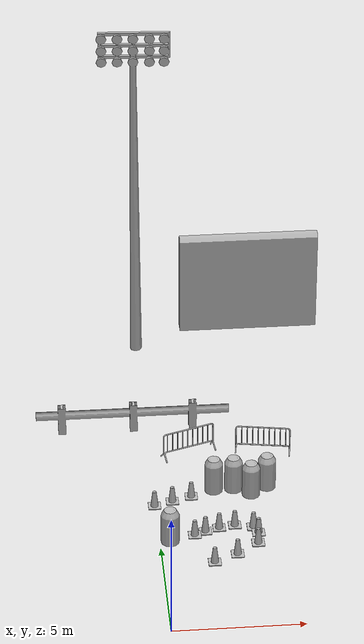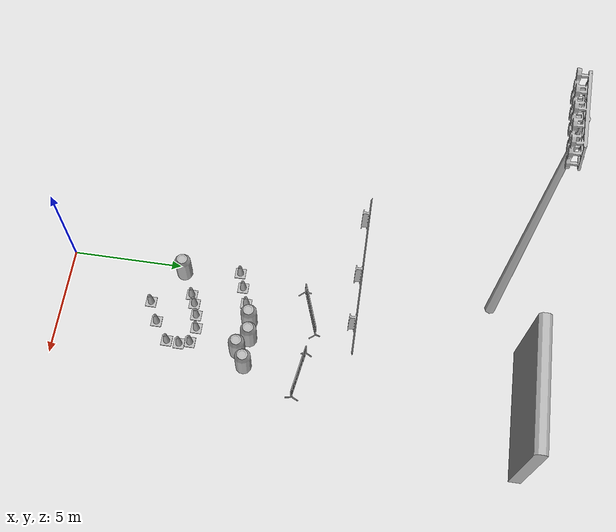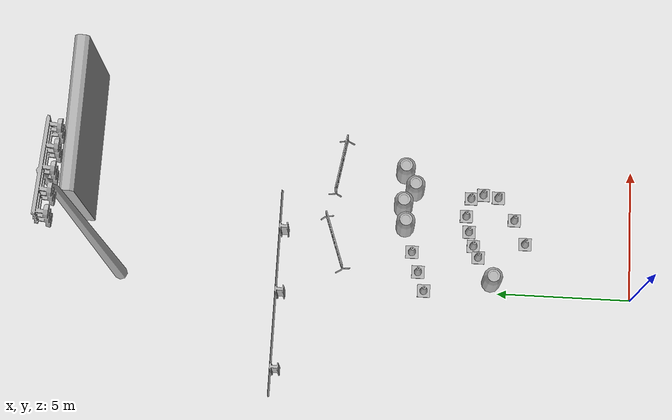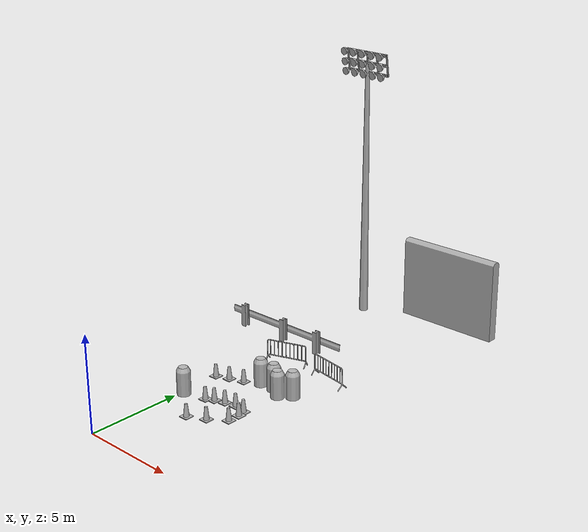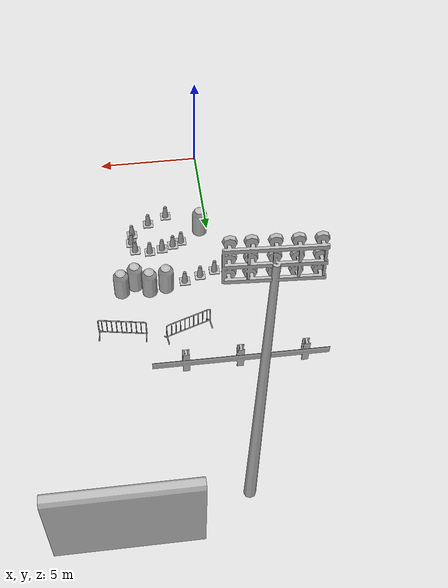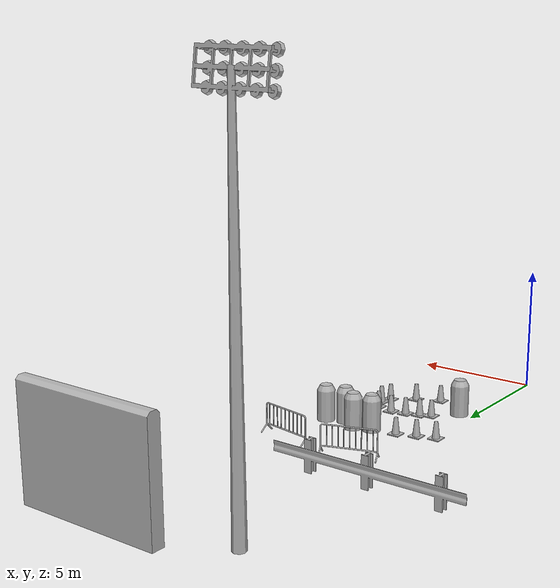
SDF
<sdf version="1.7">
 <world name="default">
  <model name="aws_robomaker_racetrack_CrashworthBucket_01_04">
   <frame name="aws_CrashworthBucket_01::__model__" attached_to="aws_CrashworthBucket_01::body">
    <pose relative_to="__model__">0 0 0 0 -0 0</pose>
   </frame>
   <link name="aws_CrashworthBucket_01::body">
    <pose relative_to="aws_CrashworthBucket_01::__model__">0 0 0 0 -0 0</pose>
    <inertial>
     <mass>5</mass>
     <inertia><ixx>1</ixx><ixy>0</ixy><ixz>0</ixz><iyy>1</iyy><iyz>0</iyz><izz>1</izz></inertia>
    </inertial>
    <visual name="visual">
     <geometry>
      <mesh>
       <uri>file://models/aws_robomaker_racetrack_CrashworthBucket_01/meshes/aws_CrashworthBucket_01_visual.DAE</uri>
      </mesh>
     </geometry>
     <material><shader type="pixel"><normal_map>__default__</normal_map></shader></material>
     <meta><layer>0</layer></meta>
    </visual>
    <collision name="collision_0">
     <geometry>
      <mesh>
       <uri>file://models/aws_robomaker_racetrack_CrashworthBucket_01/meshes/aws_CrashworthBucket_01_collision.DAE</uri>
       <scale>1 1 1</scale>
      </mesh>
     </geometry>
     <surface>
      <friction>
       <ode><mu>1</mu><mu2>1</mu2><fdir1>0 0 0</fdir1><slip1>0</slip1><slip2>0</slip2></ode>
       <torsional>
        <coefficient>1</coefficient>
        <patch_radius>0</patch_radius>
        <surface_radius>0</surface_radius>
        <use_patch_radius>1</use_patch_radius>
        <ode><slip>0</slip></ode>
       </torsional>
      </friction>
      <bounce><restitution_coefficient>0</restitution_coefficient><threshold>1e+06</threshold></bounce>
      <contact>
       <collide_without_contact>0</collide_without_contact>
       <collide_without_contact_bitmask>1</collide_without_contact_bitmask>
       <collide_bitmask>1</collide_bitmask>
       <ode>
        <soft_cfm>0</soft_cfm>
        <soft_erp>0.2</soft_erp>
        <kp>1e+13</kp>
        <kd>1</kd>
        <max_vel>0.01</max_vel>
        <min_depth>0</min_depth>
       </ode>
       <bullet>
        <split_impulse>1</split_impulse>
        <split_impulse_penetration_threshold>-0.01</split_impulse_penetration_threshold>
        <soft_cfm>0</soft_cfm>
        <soft_erp>0.2</soft_erp>
        <kp>1e+13</kp>
        <kd>1</kd>
       </bullet>
      </contact>
     </surface>
    </collision>
   </link>
   <static>1</static>
   <pose>2.35672 8.58743 0.054 0 -0 0.094608</pose>
  </model>
  <model name="aws_robomaker_racetrack_CrashworthBucket_01_05">
   <frame name="aws_CrashworthBucket_01::__model__" attached_to="aws_CrashworthBucket_01::body">
    <pose relative_to="__model__">0 0 0 0 -0 0</pose>
   </frame>
   <link name="aws_CrashworthBucket_01::body">
    <pose relative_to="aws_CrashworthBucket_01::__model__">0 0 0 0 -0 0</pose>
    <inertial>
     <mass>5</mass>
     <inertia><ixx>1</ixx><ixy>0</ixy><ixz>0</ixz><iyy>1</iyy><iyz>0</iyz><izz>1</izz></inertia>
    </inertial>
    <visual name="visual">
     <geometry>
      <mesh>
       <uri>file://models/aws_robomaker_racetrack_CrashworthBucket_01/meshes/aws_CrashworthBucket_01_visual.DAE</uri>
      </mesh>
     </geometry>
     <material><shader type="pixel"><normal_map>__default__</normal_map></shader></material>
     <meta><layer>0</layer></meta>
    </visual>
    <collision name="collision_0">
     <geometry>
      <mesh>
       <uri>file://models/aws_robomaker_racetrack_CrashworthBucket_01/meshes/aws_CrashworthBucket_01_collision.DAE</uri>
       <scale>1 1 1</scale>
      </mesh>
     </geometry>
     <surface>
      <friction>
       <ode><mu>1</mu><mu2>1</mu2><fdir1>0 0 0</fdir1><slip1>0</slip1><slip2>0</slip2></ode>
       <torsional>
        <coefficient>1</coefficient>
        <patch_radius>0</patch_radius>
        <surface_radius>0</surface_radius>
        <use_patch_radius>1</use_patch_radius>
        <ode><slip>0</slip></ode>
       </torsional>
      </friction>
      <bounce><restitution_coefficient>0</restitution_coefficient><threshold>1e+06</threshold></bounce>
      <contact>
       <collide_without_contact>0</collide_without_contact>
       <collide_without_contact_bitmask>1</collide_without_contact_bitmask>
       <collide_bitmask>1</collide_bitmask>
       <ode>
        <soft_cfm>0</soft_cfm>
        <soft_erp>0.2</soft_erp>
        <kp>1e+13</kp>
        <kd>1</kd>
        <max_vel>0.01</max_vel>
        <min_depth>0</min_depth>
       </ode>
       <bullet>
        <split_impulse>1</split_impulse>
        <split_impulse_penetration_threshold>-0.01</split_impulse_penetration_threshold>
        <soft_cfm>0</soft_cfm>
        <soft_erp>0.2</soft_erp>
        <kp>1e+13</kp>
        <kd>1</kd>
       </bullet>
      </contact>
     </surface>
    </collision>
   </link>
   <static>1</static>
   <pose>3.14399 8.69292 0 0 -0 0.292667</pose>
  </model>
  <model name="aws_robomaker_racetrack_CrashworthBucket_01_43">
   <frame name="aws_CrashworthBucket_01::__model__" attached_to="aws_CrashworthBucket_01::body">
    <pose relative_to="__model__">0 0 0 0 -0 0</pose>
   </frame>
   <link name="aws_CrashworthBucket_01::body">
    <pose relative_to="aws_CrashworthBucket_01::__model__">0 0 0 0 -0 0</pose>
    <inertial>
     <mass>5</mass>
     <inertia><ixx>1</ixx><ixy>0</ixy><ixz>0</ixz><iyy>1</iyy><iyz>0</iyz><izz>1</izz></inertia>
    </inertial>
    <visual name="visual">
     <geometry>
      <mesh>
       <uri>file://models/aws_robomaker_racetrack_CrashworthBucket_01/meshes/aws_CrashworthBucket_01_visual.DAE</uri>
      </mesh>
     </geometry>
     <material><shader type="pixel"><normal_map>__default__</normal_map></shader></material>
     <meta><layer>0</layer></meta>
    </visual>
    <collision name="collision_0">
     <geometry>
      <mesh>
       <uri>file://models/aws_robomaker_racetrack_CrashworthBucket_01/meshes/aws_CrashworthBucket_01_collision.DAE</uri>
       <scale>1 1 1</scale>
      </mesh>
     </geometry>
     <surface>
      <friction>
       <ode><mu>1</mu><mu2>1</mu2><fdir1>0 0 0</fdir1><slip1>0</slip1><slip2>0</slip2></ode>
       <torsional>
        <coefficient>1</coefficient>
        <patch_radius>0</patch_radius>
        <surface_radius>0</surface_radius>
        <use_patch_radius>1</use_patch_radius>
        <ode><slip>0</slip></ode>
       </torsional>
      </friction>
      <bounce><restitution_coefficient>0</restitution_coefficient><threshold>1e+06</threshold></bounce>
      <contact>
       <collide_without_contact>0</collide_without_contact>
       <collide_without_contact_bitmask>1</collide_without_contact_bitmask>
       <collide_bitmask>1</collide_bitmask>
       <ode>
        <soft_cfm>0</soft_cfm>
        <soft_erp>0.2</soft_erp>
        <kp>1e+13</kp>
        <kd>1</kd>
        <max_vel>0.01</max_vel>
        <min_depth>0</min_depth>
       </ode>
       <bullet>
        <split_impulse>1</split_impulse>
        <split_impulse_penetration_threshold>-0.01</split_impulse_penetration_threshold>
        <soft_cfm>0</soft_cfm>
        <soft_erp>0.2</soft_erp>
        <kp>1e+13</kp>
        <kd>1</kd>
       </bullet>
      </contact>
     </surface>
    </collision>
   </link>
   <static>1</static>
   <pose>4.45229 8.66174 0.054 0 -0 0.095583</pose>
  </model>
  <model name="aws_robomaker_racetrack_CrashworthBucket_01_51">
   <frame name="aws_CrashworthBucket_01::__model__" attached_to="aws_CrashworthBucket_01::body">
    <pose relative_to="__model__">0 0 0 0 -0 0</pose>
   </frame>
   <link name="aws_CrashworthBucket_01::body">
    <pose relative_to="aws_CrashworthBucket_01::__model__">0 0 0 0 -0 0</pose>
    <inertial>
     <mass>5</mass>
     <inertia><ixx>1</ixx><ixy>0</ixy><ixz>0</ixz><iyy>1</iyy><iyz>0</iyz><izz>1</izz></inertia>
    </inertial>
    <visual name="visual">
     <geometry>
      <mesh>
       <uri>file://models/aws_robomaker_racetrack_CrashworthBucket_01/meshes/aws_CrashworthBucket_01_visual.DAE</uri>
      </mesh>
     </geometry>
     <material><shader type="pixel"><normal_map>__default__</normal_map></shader></material>
     <meta><layer>0</layer></meta>
    </visual>
    <collision name="collision_0">
     <geometry>
      <mesh>
       <uri>file://models/aws_robomaker_racetrack_CrashworthBucket_01/meshes/aws_CrashworthBucket_01_collision.DAE</uri>
       <scale>1 1 1</scale>
      </mesh>
     </geometry>
     <surface>
      <friction>
       <ode><mu>1</mu><mu2>1</mu2><fdir1>0 0 0</fdir1><slip1>0</slip1><slip2>0</slip2></ode>
       <torsional>
        <coefficient>1</coefficient>
        <patch_radius>0</patch_radius>
        <surface_radius>0</surface_radius>
        <use_patch_radius>1</use_patch_radius>
        <ode><slip>0</slip></ode>
       </torsional>
      </friction>
      <bounce><restitution_coefficient>0</restitution_coefficient><threshold>1e+06</threshold></bounce>
      <contact>
       <collide_without_contact>0</collide_without_contact>
       <collide_without_contact_bitmask>1</collide_without_contact_bitmask>
       <collide_bitmask>1</collide_bitmask>
       <ode>
        <soft_cfm>0</soft_cfm>
        <soft_erp>0.2</soft_erp>
        <kp>1e+13</kp>
        <kd>1</kd>
        <max_vel>0.01</max_vel>
        <min_depth>0</min_depth>
       </ode>
       <bullet>
        <split_impulse>1</split_impulse>
        <split_impulse_penetration_threshold>-0.01</split_impulse_penetration_threshold>
        <soft_cfm>0</soft_cfm>
        <soft_erp>0.2</soft_erp>
        <kp>1e+13</kp>
        <kd>1</kd>
       </bullet>
      </contact>
     </surface>
    </collision>
   </link>
   <static>1</static>
   <pose>0.381876 5.26765 0.138867 0 -0 0</pose>
  </model>
  <model name="aws_robomaker_racetrack_CrashworthBucket_01_53">
   <frame name="aws_CrashworthBucket_01::__model__" attached_to="aws_CrashworthBucket_01::body">
    <pose relative_to="__model__">0 0 0 0 -0 0</pose>
   </frame>
   <link name="aws_CrashworthBucket_01::body">
    <pose relative_to="aws_CrashworthBucket_01::__model__">0 0 0 0 -0 0</pose>
    <inertial>
     <mass>5</mass>
     <inertia><ixx>1</ixx><ixy>0</ixy><ixz>0</ixz><iyy>1</iyy><iyz>0</iyz><izz>1</izz></inertia>
    </inertial>
    <visual name="visual">
     <geometry>
      <mesh>
       <uri>file://models/aws_robomaker_racetrack_CrashworthBucket_01/meshes/aws_CrashworthBucket_01_visual.DAE</uri>
      </mesh>
     </geometry>
     <material><shader type="pixel"><normal_map>__default__</normal_map></shader></material>
     <meta><layer>0</layer></meta>
    </visual>
    <collision name="collision_0">
     <geometry>
      <mesh>
       <uri>file://models/aws_robomaker_racetrack_CrashworthBucket_01/meshes/aws_CrashworthBucket_01_collision.DAE</uri>
       <scale>1 1 1</scale>
      </mesh>
     </geometry>
     <surface>
      <friction>
       <ode><mu>1</mu><mu2>1</mu2><fdir1>0 0 0</fdir1><slip1>0</slip1><slip2>0</slip2></ode>
       <torsional>
        <coefficient>1</coefficient>
        <patch_radius>0</patch_radius>
        <surface_radius>0</surface_radius>
        <use_patch_radius>1</use_patch_radius>
        <ode><slip>0</slip></ode>
       </torsional>
      </friction>
      <bounce><restitution_coefficient>0</restitution_coefficient><threshold>1e+06</threshold></bounce>
      <contact>
       <collide_without_contact>0</collide_without_contact>
       <collide_without_contact_bitmask>1</collide_without_contact_bitmask>
       <collide_bitmask>1</collide_bitmask>
       <ode>
        <soft_cfm>0</soft_cfm>
        <soft_erp>0.2</soft_erp>
        <kp>1e+13</kp>
        <kd>1</kd>
        <max_vel>0.01</max_vel>
        <min_depth>0</min_depth>
       </ode>
       <bullet>
        <split_impulse>1</split_impulse>
        <split_impulse_penetration_threshold>-0.01</split_impulse_penetration_threshold>
        <soft_cfm>0</soft_cfm>
        <soft_erp>0.2</soft_erp>
        <kp>1e+13</kp>
        <kd>1</kd>
       </bullet>
      </contact>
     </surface>
    </collision>
   </link>
   <static>1</static>
   <pose>3.7947 8.27498 0 0 0 -0.244875</pose>
  </model>
  <model name="aws_robomaker_racetrack_Fence_01_01">
   <frame name="aws_Fence_01::__model__" attached_to="aws_Fence_01::body">
    <pose relative_to="__model__">0 0 0 0 -0 0</pose>
   </frame>
   <link name="aws_Fence_01::body">
    <pose relative_to="aws_Fence_01::__model__">0 0 0 0 -0 0</pose>
    <inertial>
     <mass>5</mass>
     <inertia><ixx>1</ixx><ixy>0</ixy><ixz>0</ixz><iyy>1</iyy><iyz>0</iyz><izz>1</izz></inertia>
    </inertial>
    <visual name="visual">
     <geometry>
      <mesh><uri>file://models/aws_robomaker_racetrack_Fence_01/meshes/aws_Fence_01_visual.DAE</uri></mesh>
     </geometry>
     <material><shader type="pixel"><normal_map>__default__</normal_map></shader></material>
     <meta><layer>0</layer></meta>
    </visual>
    <collision name="collision_0">
     <geometry>
      <mesh>
       <uri>file://models/aws_robomaker_racetrack_Fence_01/meshes/aws_Fence_01_collision.DAE</uri>
       <scale>1 1 1</scale>
      </mesh>
     </geometry>
     <surface>
      <friction>
       <ode><mu>1</mu><mu2>1</mu2><fdir1>0 0 0</fdir1><slip1>0</slip1><slip2>0</slip2></ode>
       <torsional>
        <coefficient>1</coefficient>
        <patch_radius>0</patch_radius>
        <surface_radius>0</surface_radius>
        <use_patch_radius>1</use_patch_radius>
        <ode><slip>0</slip></ode>
       </torsional>
      </friction>
      <bounce><restitution_coefficient>0</restitution_coefficient><threshold>1e+06</threshold></bounce>
      <contact>
       <collide_without_contact>0</collide_without_contact>
       <collide_without_contact_bitmask>1</collide_without_contact_bitmask>
       <collide_bitmask>1</collide_bitmask>
       <ode>
        <soft_cfm>0</soft_cfm>
        <soft_erp>0.2</soft_erp>
        <kp>1e+13</kp>
        <kd>1</kd>
        <max_vel>0.01</max_vel>
        <min_depth>0</min_depth>
       </ode>
       <bullet>
        <split_impulse>1</split_impulse>
        <split_impulse_penetration_threshold>-0.01</split_impulse_penetration_threshold>
        <soft_cfm>0</soft_cfm>
        <soft_erp>0.2</soft_erp>
        <kp>1e+13</kp>
        <kd>1</kd>
       </bullet>
      </contact>
     </surface>
    </collision>
   </link>
   <static>1</static>
   <pose>-0.500271 13.1587 0 0 0 -1.57272</pose>
  </model>
  <model name="aws_robomaker_racetrack_Fence_02_05">
   <frame name="aws_Fence_02::__model__" attached_to="aws_Fence_02::body">
    <pose relative_to="__model__">0 0 0 0 -0 0</pose>
   </frame>
   <link name="aws_Fence_02::body">
    <pose relative_to="aws_Fence_02::__model__">0 0 0 0 -0 0</pose>
    <inertial>
     <mass>5</mass>
     <inertia><ixx>9.6</ixx><ixy>0</ixy><ixz>0</ixz><iyy>8.2</iyy><iyz>0</iyz><izz>2.1</izz></inertia>
    </inertial>
    <visual name="visual">
     <geometry>
      <mesh><uri>file://models/aws_robomaker_racetrack_Fence_02/meshes/aws_Fence_02_visual.DAE</uri></mesh>
     </geometry>
     <material><shader type="pixel"><normal_map>__default__</normal_map></shader></material>
     <meta><layer>0</layer></meta>
    </visual>
    <collision name="collision_0">
     <geometry>
      <mesh>
       <uri>file://models/aws_robomaker_racetrack_Fence_02/meshes/aws_Fence_02_collision.DAE</uri>
       <scale>1 1 1</scale>
      </mesh>
     </geometry>
     <surface>
      <friction>
       <ode><mu>1</mu><mu2>1</mu2><fdir1>0 0 0</fdir1><slip1>0</slip1><slip2>0</slip2></ode>
       <torsional>
        <coefficient>1</coefficient>
        <patch_radius>0</patch_radius>
        <surface_radius>0</surface_radius>
        <use_patch_radius>1</use_patch_radius>
        <ode><slip>0</slip></ode>
       </torsional>
      </friction>
      <bounce><restitution_coefficient>0</restitution_coefficient><threshold>1e+06</threshold></bounce>
      <contact>
       <collide_without_contact>0</collide_without_contact>
       <collide_without_contact_bitmask>1</collide_without_contact_bitmask>
       <collide_bitmask>1</collide_bitmask>
      </contact>
     </surface>
    </collision>
   </link>
   <static>1</static>
   <pose>4.57205 11.1353 0 0 0 -1.73608</pose>
  </model>
  <model name="aws_robomaker_racetrack_Fence_02_07">
   <frame name="aws_Fence_02::__model__" attached_to="aws_Fence_02::body">
    <pose relative_to="__model__">0 0 0 0 -0 0</pose>
   </frame>
   <link name="aws_Fence_02::body">
    <pose relative_to="aws_Fence_02::__model__">0 0 0 0 -0 0</pose>
    <inertial>
     <mass>5</mass>
     <inertia><ixx>9.6</ixx><ixy>0</ixy><ixz>0</ixz><iyy>8.2</iyy><iyz>0</iyz><izz>2.1</izz></inertia>
    </inertial>
    <visual name="visual">
     <geometry>
      <mesh><uri>file://models/aws_robomaker_racetrack_Fence_02/meshes/aws_Fence_02_visual.DAE</uri></mesh>
     </geometry>
     <material><shader type="pixel"><normal_map>__default__</normal_map></shader></material>
     <meta><layer>0</layer></meta>
    </visual>
    <collision name="collision_0">
     <geometry>
      <mesh>
       <uri>file://models/aws_robomaker_racetrack_Fence_02/meshes/aws_Fence_02_collision.DAE</uri>
       <scale>1 1 1</scale>
      </mesh>
     </geometry>
     <surface>
      <friction>
       <ode><mu>1</mu><mu2>1</mu2><fdir1>0 0 0</fdir1><slip1>0</slip1><slip2>0</slip2></ode>
       <torsional>
        <coefficient>1</coefficient>
        <patch_radius>0</patch_radius>
        <surface_radius>0</surface_radius>
        <use_patch_radius>1</use_patch_radius>
        <ode><slip>0</slip></ode>
       </torsional>
      </friction>
      <bounce><restitution_coefficient>0</restitution_coefficient><threshold>1e+06</threshold></bounce>
      <contact>
       <collide_without_contact>0</collide_without_contact>
       <collide_without_contact_bitmask>1</collide_without_contact_bitmask>
       <collide_bitmask>1</collide_bitmask>
      </contact>
     </surface>
    </collision>
   </link>
   <static>1</static>
   <pose>1.60246 11.2143 0 0 -0 1.90339</pose>
  </model>
  <model name="aws_robomaker_racetrack_TrafficCone_01_00">
   <frame name="aws_TrafficCone_01::__model__" attached_to="aws_TrafficCone_01::body">
    <pose relative_to="__model__">0 0 0 0 -0 0</pose>
   </frame>
   <link name="aws_TrafficCone_01::body">
    <pose relative_to="aws_TrafficCone_01::__model__">0 0 0 0 -0 0</pose>
    <inertial>
     <mass>0.5</mass>
     <inertia><ixx>1</ixx><ixy>0</ixy><ixz>0</ixz><iyy>1</iyy><iyz>0</iyz><izz>1</izz></inertia>
    </inertial>
    <visual name="visual">
     <geometry>
      <mesh>
       <uri>file://models/aws_robomaker_racetrack_TrafficCone_01/meshes/aws_TrafficCone_01_visual.DAE</uri>
      </mesh>
     </geometry>
     <material><shader type="pixel"><normal_map>__default__</normal_map></shader></material>
     <meta><layer>0</layer></meta>
    </visual>
    <collision name="collision_0">
     <geometry>
      <mesh>
       <uri>file://models/aws_robomaker_racetrack_TrafficCone_01/meshes/aws_TrafficCone_01_coliision.DAE</uri>
       <scale>1 1 1</scale>
      </mesh>
     </geometry>
     <surface>
      <friction>
       <ode><mu>1</mu><mu2>1</mu2><fdir1>0 0 0</fdir1><slip1>0</slip1><slip2>0</slip2></ode>
       <torsional>
        <coefficient>1</coefficient>
        <patch_radius>0</patch_radius>
        <surface_radius>0</surface_radius>
        <use_patch_radius>1</use_patch_radius>
        <ode><slip>0</slip></ode>
       </torsional>
      </friction>
      <bounce><restitution_coefficient>0</restitution_coefficient><threshold>1e+06</threshold></bounce>
      <contact>
       <collide_without_contact>0</collide_without_contact>
       <collide_without_contact_bitmask>1</collide_without_contact_bitmask>
       <collide_bitmask>1</collide_bitmask>
       <ode>
        <soft_cfm>0</soft_cfm>
        <soft_erp>0.2</soft_erp>
        <kp>1e+13</kp>
        <kd>1</kd>
        <max_vel>0.01</max_vel>
        <min_depth>0</min_depth>
       </ode>
       <bullet>
        <split_impulse>1</split_impulse>
        <split_impulse_penetration_threshold>-0.01</split_impulse_penetration_threshold>
        <soft_cfm>0</soft_cfm>
        <soft_erp>0.2</soft_erp>
        <kp>1e+13</kp>
        <kd>1</kd>
       </bullet>
      </contact>
     </surface>
    </collision>
   </link>
   <static>1</static>
   <pose>1.97113 3.98946 0 0 -0 0</pose>
  </model>
  <model name="aws_robomaker_racetrack_TrafficCone_01_03">
   <frame name="aws_TrafficCone_01::__model__" attached_to="aws_TrafficCone_01::body">
    <pose relative_to="__model__">0 0 0 0 -0 0</pose>
   </frame>
   <link name="aws_TrafficCone_01::body">
    <pose relative_to="aws_TrafficCone_01::__model__">0 0 0 0 -0 0</pose>
    <inertial>
     <mass>0.5</mass>
     <inertia><ixx>1</ixx><ixy>0</ixy><ixz>0</ixz><iyy>1</iyy><iyz>0</iyz><izz>1</izz></inertia>
    </inertial>
    <visual name="visual">
     <geometry>
      <mesh>
       <uri>file://models/aws_robomaker_racetrack_TrafficCone_01/meshes/aws_TrafficCone_01_visual.DAE</uri>
      </mesh>
     </geometry>
     <material><shader type="pixel"><normal_map>__default__</normal_map></shader></material>
     <meta><layer>0</layer></meta>
    </visual>
    <collision name="collision_0">
     <geometry>
      <mesh>
       <uri>file://models/aws_robomaker_racetrack_TrafficCone_01/meshes/aws_TrafficCone_01_coliision.DAE</uri>
       <scale>1 1 1</scale>
      </mesh>
     </geometry>
     <surface>
      <friction>
       <ode><mu>1</mu><mu2>1</mu2><fdir1>0 0 0</fdir1><slip1>0</slip1><slip2>0</slip2></ode>
       <torsional>
        <coefficient>1</coefficient>
        <patch_radius>0</patch_radius>
        <surface_radius>0</surface_radius>
        <use_patch_radius>1</use_patch_radius>
        <ode><slip>0</slip></ode>
       </torsional>
      </friction>
      <bounce><restitution_coefficient>0</restitution_coefficient><threshold>1e+06</threshold></bounce>
      <contact>
       <collide_without_contact>0</collide_without_contact>
       <collide_without_contact_bitmask>1</collide_without_contact_bitmask>
       <collide_bitmask>1</collide_bitmask>
       <ode>
        <soft_cfm>0</soft_cfm>
        <soft_erp>0.2</soft_erp>
        <kp>1e+13</kp>
        <kd>1</kd>
        <max_vel>0.01</max_vel>
        <min_depth>0</min_depth>
       </ode>
       <bullet>
        <split_impulse>1</split_impulse>
        <split_impulse_penetration_threshold>-0.01</split_impulse_penetration_threshold>
        <soft_cfm>0</soft_cfm>
        <soft_erp>0.2</soft_erp>
        <kp>1e+13</kp>
        <kd>1</kd>
       </bullet>
      </contact>
     </surface>
    </collision>
   </link>
   <static>1</static>
   <pose>3.73732 5.05737 0 0 -0 0</pose>
  </model>
  <model name="aws_robomaker_racetrack_TrafficCone_01_04">
   <frame name="aws_TrafficCone_01::__model__" attached_to="aws_TrafficCone_01::body">
    <pose relative_to="__model__">0 0 0 0 -0 0</pose>
   </frame>
   <link name="aws_TrafficCone_01::body">
    <pose relative_to="aws_TrafficCone_01::__model__">0 0 0 0 -0 0</pose>
    <inertial>
     <mass>0.5</mass>
     <inertia><ixx>1</ixx><ixy>0</ixy><ixz>0</ixz><iyy>1</iyy><iyz>0</iyz><izz>1</izz></inertia>
    </inertial>
    <visual name="visual">
     <geometry>
      <mesh>
       <uri>file://models/aws_robomaker_racetrack_TrafficCone_01/meshes/aws_TrafficCone_01_visual.DAE</uri>
      </mesh>
     </geometry>
     <material><shader type="pixel"><normal_map>__default__</normal_map></shader></material>
     <meta><layer>0</layer></meta>
    </visual>
    <collision name="collision_0">
     <geometry>
      <mesh>
       <uri>file://models/aws_robomaker_racetrack_TrafficCone_01/meshes/aws_TrafficCone_01_coliision.DAE</uri>
       <scale>1 1 1</scale>
      </mesh>
     </geometry>
     <surface>
      <friction>
       <ode><mu>1</mu><mu2>1</mu2><fdir1>0 0 0</fdir1><slip1>0</slip1><slip2>0</slip2></ode>
       <torsional>
        <coefficient>1</coefficient>
        <patch_radius>0</patch_radius>
        <surface_radius>0</surface_radius>
        <use_patch_radius>1</use_patch_radius>
        <ode><slip>0</slip></ode>
       </torsional>
      </friction>
      <bounce><restitution_coefficient>0</restitution_coefficient><threshold>1e+06</threshold></bounce>
      <contact>
       <collide_without_contact>0</collide_without_contact>
       <collide_without_contact_bitmask>1</collide_without_contact_bitmask>
       <collide_bitmask>1</collide_bitmask>
       <ode>
        <soft_cfm>0</soft_cfm>
        <soft_erp>0.2</soft_erp>
        <kp>1e+13</kp>
        <kd>1</kd>
        <max_vel>0.01</max_vel>
        <min_depth>0</min_depth>
       </ode>
       <bullet>
        <split_impulse>1</split_impulse>
        <split_impulse_penetration_threshold>-0.01</split_impulse_penetration_threshold>
        <soft_cfm>0</soft_cfm>
        <soft_erp>0.2</soft_erp>
        <kp>1e+13</kp>
        <kd>1</kd>
       </bullet>
      </contact>
     </surface>
    </collision>
   </link>
   <static>1</static>
   <pose>3.6571 6.09365 0 0 -0 0</pose>
  </model>
  <model name="aws_robomaker_racetrack_TrafficCone_01_05">
   <frame name="aws_TrafficCone_01::__model__" attached_to="aws_TrafficCone_01::body">
    <pose relative_to="__model__">0 0 0 0 -0 0</pose>
   </frame>
   <link name="aws_TrafficCone_01::body">
    <pose relative_to="aws_TrafficCone_01::__model__">0 0 0 0 -0 0</pose>
    <inertial>
     <mass>0.5</mass>
     <inertia><ixx>1</ixx><ixy>0</ixy><ixz>0</ixz><iyy>1</iyy><iyz>0</iyz><izz>1</izz></inertia>
    </inertial>
    <visual name="visual">
     <geometry>
      <mesh>
       <uri>file://models/aws_robomaker_racetrack_TrafficCone_01/meshes/aws_TrafficCone_01_visual.DAE</uri>
      </mesh>
     </geometry>
     <material><shader type="pixel"><normal_map>__default__</normal_map></shader></material>
     <meta><layer>0</layer></meta>
    </visual>
    <collision name="collision_0">
     <geometry>
      <mesh>
       <uri>file://models/aws_robomaker_racetrack_TrafficCone_01/meshes/aws_TrafficCone_01_coliision.DAE</uri>
       <scale>1 1 1</scale>
      </mesh>
     </geometry>
     <surface>
      <friction>
       <ode><mu>1</mu><mu2>1</mu2><fdir1>0 0 0</fdir1><slip1>0</slip1><slip2>0</slip2></ode>
       <torsional>
        <coefficient>1</coefficient>
        <patch_radius>0</patch_radius>
        <surface_radius>0</surface_radius>
        <use_patch_radius>1</use_patch_radius>
        <ode><slip>0</slip></ode>
       </torsional>
      </friction>
      <bounce><restitution_coefficient>0</restitution_coefficient><threshold>1e+06</threshold></bounce>
      <contact>
       <collide_without_contact>0</collide_without_contact>
       <collide_without_contact_bitmask>1</collide_without_contact_bitmask>
       <collide_bitmask>1</collide_bitmask>
       <ode>
        <soft_cfm>0</soft_cfm>
        <soft_erp>0.2</soft_erp>
        <kp>1e+13</kp>
        <kd>1</kd>
        <max_vel>0.01</max_vel>
        <min_depth>0</min_depth>
       </ode>
       <bullet>
        <split_impulse>1</split_impulse>
        <split_impulse_penetration_threshold>-0.01</split_impulse_penetration_threshold>
        <soft_cfm>0</soft_cfm>
        <soft_erp>0.2</soft_erp>
        <kp>1e+13</kp>
        <kd>1</kd>
       </bullet>
      </contact>
     </surface>
    </collision>
   </link>
   <static>1</static>
   <pose>2.95265 6.25795 0 0 -0 0</pose>
  </model>
  <model name="aws_robomaker_racetrack_TrafficCone_01_06">
   <frame name="aws_TrafficCone_01::__model__" attached_to="aws_TrafficCone_01::body">
    <pose relative_to="__model__">0 0 0 0 -0 0</pose>
   </frame>
   <link name="aws_TrafficCone_01::body">
    <pose relative_to="aws_TrafficCone_01::__model__">0 0 0 0 -0 0</pose>
    <inertial>
     <mass>0.5</mass>
     <inertia><ixx>1</ixx><ixy>0</ixy><ixz>0</ixz><iyy>1</iyy><iyz>0</iyz><izz>1</izz></inertia>
    </inertial>
    <visual name="visual">
     <geometry>
      <mesh>
       <uri>file://models/aws_robomaker_racetrack_TrafficCone_01/meshes/aws_TrafficCone_01_visual.DAE</uri>
      </mesh>
     </geometry>
     <material><shader type="pixel"><normal_map>__default__</normal_map></shader></material>
     <meta><layer>0</layer></meta>
    </visual>
    <collision name="collision_0">
     <geometry>
      <mesh>
       <uri>file://models/aws_robomaker_racetrack_TrafficCone_01/meshes/aws_TrafficCone_01_coliision.DAE</uri>
       <scale>1 1 1</scale>
      </mesh>
     </geometry>
     <surface>
      <friction>
       <ode><mu>1</mu><mu2>1</mu2><fdir1>0 0 0</fdir1><slip1>0</slip1><slip2>0</slip2></ode>
       <torsional>
        <coefficient>1</coefficient>
        <patch_radius>0</patch_radius>
        <surface_radius>0</surface_radius>
        <use_patch_radius>1</use_patch_radius>
        <ode><slip>0</slip></ode>
       </torsional>
      </friction>
      <bounce><restitution_coefficient>0</restitution_coefficient><threshold>1e+06</threshold></bounce>
      <contact>
       <collide_without_contact>0</collide_without_contact>
       <collide_without_contact_bitmask>1</collide_without_contact_bitmask>
       <collide_bitmask>1</collide_bitmask>
       <ode>
        <soft_cfm>0</soft_cfm>
        <soft_erp>0.2</soft_erp>
        <kp>1e+13</kp>
        <kd>1</kd>
        <max_vel>0.01</max_vel>
        <min_depth>0</min_depth>
       </ode>
       <bullet>
        <split_impulse>1</split_impulse>
        <split_impulse_penetration_threshold>-0.01</split_impulse_penetration_threshold>
        <soft_cfm>0</soft_cfm>
        <soft_erp>0.2</soft_erp>
        <kp>1e+13</kp>
        <kd>1</kd>
       </bullet>
      </contact>
     </surface>
    </collision>
   </link>
   <static>1</static>
   <pose>2.33949 6.13594 0 0 -0 0</pose>
  </model>
  <model name="aws_robomaker_racetrack_TrafficCone_01_07">
   <frame name="aws_TrafficCone_01::__model__" attached_to="aws_TrafficCone_01::body">
    <pose relative_to="__model__">0 0 0 0 -0 0</pose>
   </frame>
   <link name="aws_TrafficCone_01::body">
    <pose relative_to="aws_TrafficCone_01::__model__">0 0 0 0 -0 0</pose>
    <inertial>
     <mass>0.5</mass>
     <inertia><ixx>1</ixx><ixy>0</ixy><ixz>0</ixz><iyy>1</iyy><iyz>0</iyz><izz>1</izz></inertia>
    </inertial>
    <visual name="visual">
     <geometry>
      <mesh>
       <uri>file://models/aws_robomaker_racetrack_TrafficCone_01/meshes/aws_TrafficCone_01_visual.DAE</uri>
      </mesh>
     </geometry>
     <material><shader type="pixel"><normal_map>__default__</normal_map></shader></material>
     <meta><layer>0</layer></meta>
    </visual>
    <collision name="collision_0">
     <geometry>
      <mesh>
       <uri>file://models/aws_robomaker_racetrack_TrafficCone_01/meshes/aws_TrafficCone_01_coliision.DAE</uri>
       <scale>1 1 1</scale>
      </mesh>
     </geometry>
     <surface>
      <friction>
       <ode><mu>1</mu><mu2>1</mu2><fdir1>0 0 0</fdir1><slip1>0</slip1><slip2>0</slip2></ode>
       <torsional>
        <coefficient>1</coefficient>
        <patch_radius>0</patch_radius>
        <surface_radius>0</surface_radius>
        <use_patch_radius>1</use_patch_radius>
        <ode><slip>0</slip></ode>
       </torsional>
      </friction>
      <bounce><restitution_coefficient>0</restitution_coefficient><threshold>1e+06</threshold></bounce>
      <contact>
       <collide_without_contact>0</collide_without_contact>
       <collide_without_contact_bitmask>1</collide_without_contact_bitmask>
       <collide_bitmask>1</collide_bitmask>
       <ode>
        <soft_cfm>0</soft_cfm>
        <soft_erp>0.2</soft_erp>
        <kp>1e+13</kp>
        <kd>1</kd>
        <max_vel>0.01</max_vel>
        <min_depth>0</min_depth>
       </ode>
       <bullet>
        <split_impulse>1</split_impulse>
        <split_impulse_penetration_threshold>-0.01</split_impulse_penetration_threshold>
        <soft_cfm>0</soft_cfm>
        <soft_erp>0.2</soft_erp>
        <kp>1e+13</kp>
        <kd>1</kd>
       </bullet>
      </contact>
     </surface>
    </collision>
   </link>
   <static>1</static>
   <pose>1.79176 5.95512 0 0 -0 0</pose>
  </model>
  <model name="aws_robomaker_racetrack_TrafficCone_01_08">
   <frame name="aws_TrafficCone_01::__model__" attached_to="aws_TrafficCone_01::body">
    <pose relative_to="__model__">0 0 0 0 -0 0</pose>
   </frame>
   <link name="aws_TrafficCone_01::body">
    <pose relative_to="aws_TrafficCone_01::__model__">0 0 0 0 -0 0</pose>
    <inertial>
     <mass>0.5</mass>
     <inertia><ixx>1</ixx><ixy>0</ixy><ixz>0</ixz><iyy>1</iyy><iyz>0</iyz><izz>1</izz></inertia>
    </inertial>
    <visual name="visual">
     <geometry>
      <mesh>
       <uri>file://models/aws_robomaker_racetrack_TrafficCone_01/meshes/aws_TrafficCone_01_visual.DAE</uri>
      </mesh>
     </geometry>
     <material><shader type="pixel"><normal_map>__default__</normal_map></shader></material>
     <meta><layer>0</layer></meta>
    </visual>
    <collision name="collision_0">
     <geometry>
      <mesh>
       <uri>file://models/aws_robomaker_racetrack_TrafficCone_01/meshes/aws_TrafficCone_01_coliision.DAE</uri>
       <scale>1 1 1</scale>
      </mesh>
     </geometry>
     <surface>
      <friction>
       <ode><mu>1</mu><mu2>1</mu2><fdir1>0 0 0</fdir1><slip1>0</slip1><slip2>0</slip2></ode>
       <torsional>
        <coefficient>1</coefficient>
        <patch_radius>0</patch_radius>
        <surface_radius>0</surface_radius>
        <use_patch_radius>1</use_patch_radius>
        <ode><slip>0</slip></ode>
       </torsional>
      </friction>
      <bounce><restitution_coefficient>0</restitution_coefficient><threshold>1e+06</threshold></bounce>
      <contact>
       <collide_without_contact>0</collide_without_contact>
       <collide_without_contact_bitmask>1</collide_without_contact_bitmask>
       <collide_bitmask>1</collide_bitmask>
       <ode>
        <soft_cfm>0</soft_cfm>
        <soft_erp>0.2</soft_erp>
        <kp>1e+13</kp>
        <kd>1</kd>
        <max_vel>0.01</max_vel>
        <min_depth>0</min_depth>
       </ode>
       <bullet>
        <split_impulse>1</split_impulse>
        <split_impulse_penetration_threshold>-0.01</split_impulse_penetration_threshold>
        <soft_cfm>0</soft_cfm>
        <soft_erp>0.2</soft_erp>
        <kp>1e+13</kp>
        <kd>1</kd>
       </bullet>
      </contact>
     </surface>
    </collision>
   </link>
   <static>1</static>
   <pose>2.88374 4.42378 -0 0 -0 0</pose>
  </model>
  <model name="aws_robomaker_racetrack_TrafficCone_01_09">
   <frame name="aws_TrafficCone_01::__model__" attached_to="aws_TrafficCone_01::body">
    <pose relative_to="__model__">0 0 0 0 -0 0</pose>
   </frame>
   <link name="aws_TrafficCone_01::body">
    <pose relative_to="aws_TrafficCone_01::__model__">0 0 0 0 -0 0</pose>
    <inertial>
     <mass>0.5</mass>
     <inertia><ixx>1</ixx><ixy>0</ixy><ixz>0</ixz><iyy>1</iyy><iyz>0</iyz><izz>1</izz></inertia>
    </inertial>
    <visual name="visual">
     <geometry>
      <mesh>
       <uri>file://models/aws_robomaker_racetrack_TrafficCone_01/meshes/aws_TrafficCone_01_visual.DAE</uri>
      </mesh>
     </geometry>
     <material><shader type="pixel"><normal_map>__default__</normal_map></shader></material>
     <meta><layer>0</layer></meta>
    </visual>
    <collision name="collision_0">
     <geometry>
      <mesh>
       <uri>file://models/aws_robomaker_racetrack_TrafficCone_01/meshes/aws_TrafficCone_01_coliision.DAE</uri>
       <scale>1 1 1</scale>
      </mesh>
     </geometry>
     <surface>
      <friction>
       <ode><mu>1</mu><mu2>1</mu2><fdir1>0 0 0</fdir1><slip1>0</slip1><slip2>0</slip2></ode>
       <torsional>
        <coefficient>1</coefficient>
        <patch_radius>0</patch_radius>
        <surface_radius>0</surface_radius>
        <use_patch_radius>1</use_patch_radius>
        <ode><slip>0</slip></ode>
       </torsional>
      </friction>
      <bounce><restitution_coefficient>0</restitution_coefficient><threshold>1e+06</threshold></bounce>
      <contact>
       <collide_without_contact>0</collide_without_contact>
       <collide_without_contact_bitmask>1</collide_without_contact_bitmask>
       <collide_bitmask>1</collide_bitmask>
       <ode>
        <soft_cfm>0</soft_cfm>
        <soft_erp>0.2</soft_erp>
        <kp>1e+13</kp>
        <kd>1</kd>
        <max_vel>0.01</max_vel>
        <min_depth>0</min_depth>
       </ode>
       <bullet>
        <split_impulse>1</split_impulse>
        <split_impulse_penetration_threshold>-0.01</split_impulse_penetration_threshold>
        <soft_cfm>0</soft_cfm>
        <soft_erp>0.2</soft_erp>
        <kp>1e+13</kp>
        <kd>1</kd>
       </bullet>
      </contact>
     </surface>
    </collision>
   </link>
   <static>1</static>
   <pose>1.36541 5.75721 0 0 -0 0</pose>
  </model>
  <model name="aws_robomaker_racetrack_TrafficCone_01_10">
   <frame name="aws_TrafficCone_01::__model__" attached_to="aws_TrafficCone_01::body">
    <pose relative_to="__model__">0 0 0 0 -0 0</pose>
   </frame>
   <link name="aws_TrafficCone_01::body">
    <pose relative_to="aws_TrafficCone_01::__model__">0 0 0 0 -0 0</pose>
    <inertial>
     <mass>0.5</mass>
     <inertia><ixx>1</ixx><ixy>0</ixy><ixz>0</ixz><iyy>1</iyy><iyz>0</iyz><izz>1</izz></inertia>
    </inertial>
    <visual name="visual">
     <geometry>
      <mesh>
       <uri>file://models/aws_robomaker_racetrack_TrafficCone_01/meshes/aws_TrafficCone_01_visual.DAE</uri>
      </mesh>
     </geometry>
     <material><shader type="pixel"><normal_map>__default__</normal_map></shader></material>
     <meta><layer>0</layer></meta>
    </visual>
    <collision name="collision_0">
     <geometry>
      <mesh>
       <uri>file://models/aws_robomaker_racetrack_TrafficCone_01/meshes/aws_TrafficCone_01_coliision.DAE</uri>
       <scale>1 1 1</scale>
      </mesh>
     </geometry>
     <surface>
      <friction>
       <ode><mu>1</mu><mu2>1</mu2><fdir1>0 0 0</fdir1><slip1>0</slip1><slip2>0</slip2></ode>
       <torsional>
        <coefficient>1</coefficient>
        <patch_radius>0</patch_radius>
        <surface_radius>0</surface_radius>
        <use_patch_radius>1</use_patch_radius>
        <ode><slip>0</slip></ode>
       </torsional>
      </friction>
      <bounce><restitution_coefficient>0</restitution_coefficient><threshold>1e+06</threshold></bounce>
      <contact>
       <collide_without_contact>0</collide_without_contact>
       <collide_without_contact_bitmask>1</collide_without_contact_bitmask>
       <collide_bitmask>1</collide_bitmask>
       <ode>
        <soft_cfm>0</soft_cfm>
        <soft_erp>0.2</soft_erp>
        <kp>1e+13</kp>
        <kd>1</kd>
        <max_vel>0.01</max_vel>
        <min_depth>0</min_depth>
       </ode>
       <bullet>
        <split_impulse>1</split_impulse>
        <split_impulse_penetration_threshold>-0.01</split_impulse_penetration_threshold>
        <soft_cfm>0</soft_cfm>
        <soft_erp>0.2</soft_erp>
        <kp>1e+13</kp>
        <kd>1</kd>
       </bullet>
      </contact>
     </surface>
    </collision>
   </link>
   <static>1</static>
   <pose>3.80995 5.63612 0.054 0 -0 0</pose>
  </model>
  <model name="aws_robomaker_racetrack_TrafficCone_01_11">
   <frame name="aws_TrafficCone_01::__model__" attached_to="aws_TrafficCone_01::body">
    <pose relative_to="__model__">0 0 0 0 -0 0</pose>
   </frame>
   <link name="aws_TrafficCone_01::body">
    <pose relative_to="aws_TrafficCone_01::__model__">0 0 0 0 -0 0</pose>
    <inertial>
     <mass>0.5</mass>
     <inertia><ixx>1</ixx><ixy>0</ixy><ixz>0</ixz><iyy>1</iyy><iyz>0</iyz><izz>1</izz></inertia>
    </inertial>
    <visual name="visual">
     <geometry>
      <mesh>
       <uri>file://models/aws_robomaker_racetrack_TrafficCone_01/meshes/aws_TrafficCone_01_visual.DAE</uri>
      </mesh>
     </geometry>
     <material><shader type="pixel"><normal_map>__default__</normal_map></shader></material>
     <meta><layer>0</layer></meta>
    </visual>
    <collision name="collision_0">
     <geometry>
      <mesh>
       <uri>file://models/aws_robomaker_racetrack_TrafficCone_01/meshes/aws_TrafficCone_01_coliision.DAE</uri>
       <scale>1 1 1</scale>
      </mesh>
     </geometry>
     <surface>
      <friction>
       <ode><mu>1</mu><mu2>1</mu2><fdir1>0 0 0</fdir1><slip1>0</slip1><slip2>0</slip2></ode>
       <torsional>
        <coefficient>1</coefficient>
        <patch_radius>0</patch_radius>
        <surface_radius>0</surface_radius>
        <use_patch_radius>1</use_patch_radius>
        <ode><slip>0</slip></ode>
       </torsional>
      </friction>
      <bounce><restitution_coefficient>0</restitution_coefficient><threshold>1e+06</threshold></bounce>
      <contact>
       <collide_without_contact>0</collide_without_contact>
       <collide_without_contact_bitmask>1</collide_without_contact_bitmask>
       <collide_bitmask>1</collide_bitmask>
       <ode>
        <soft_cfm>0</soft_cfm>
        <soft_erp>0.2</soft_erp>
        <kp>1e+13</kp>
        <kd>1</kd>
        <max_vel>0.01</max_vel>
        <min_depth>0</min_depth>
       </ode>
       <bullet>
        <split_impulse>1</split_impulse>
        <split_impulse_penetration_threshold>-0.01</split_impulse_penetration_threshold>
        <soft_cfm>0</soft_cfm>
        <soft_erp>0.2</soft_erp>
        <kp>1e+13</kp>
        <kd>1</kd>
       </bullet>
      </contact>
     </surface>
    </collision>
   </link>
   <static>1</static>
   <pose>0.686235 8.01276 0 0 -0 0</pose>
  </model>
  <model name="aws_robomaker_racetrack_TrafficCone_01_12">
   <frame name="aws_TrafficCone_01::__model__" attached_to="aws_TrafficCone_01::body">
    <pose relative_to="__model__">0 0 0 0 -0 0</pose>
   </frame>
   <link name="aws_TrafficCone_01::body">
    <pose relative_to="aws_TrafficCone_01::__model__">0 0 0 0 -0 0</pose>
    <inertial>
     <mass>0.5</mass>
     <inertia><ixx>1</ixx><ixy>0</ixy><ixz>0</ixz><iyy>1</iyy><iyz>0</iyz><izz>1</izz></inertia>
    </inertial>
    <visual name="visual">
     <geometry>
      <mesh>
       <uri>file://models/aws_robomaker_racetrack_TrafficCone_01/meshes/aws_TrafficCone_01_visual.DAE</uri>
      </mesh>
     </geometry>
     <material><shader type="pixel"><normal_map>__default__</normal_map></shader></material>
     <meta><layer>0</layer></meta>
    </visual>
    <collision name="collision_0">
     <geometry>
      <mesh>
       <uri>file://models/aws_robomaker_racetrack_TrafficCone_01/meshes/aws_TrafficCone_01_coliision.DAE</uri>
       <scale>1 1 1</scale>
      </mesh>
     </geometry>
     <surface>
      <friction>
       <ode><mu>1</mu><mu2>1</mu2><fdir1>0 0 0</fdir1><slip1>0</slip1><slip2>0</slip2></ode>
       <torsional>
        <coefficient>1</coefficient>
        <patch_radius>0</patch_radius>
        <surface_radius>0</surface_radius>
        <use_patch_radius>1</use_patch_radius>
        <ode><slip>0</slip></ode>
       </torsional>
      </friction>
      <bounce><restitution_coefficient>0</restitution_coefficient><threshold>1e+06</threshold></bounce>
      <contact>
       <collide_without_contact>0</collide_without_contact>
       <collide_without_contact_bitmask>1</collide_without_contact_bitmask>
       <collide_bitmask>1</collide_bitmask>
       <ode>
        <soft_cfm>0</soft_cfm>
        <soft_erp>0.2</soft_erp>
        <kp>1e+13</kp>
        <kd>1</kd>
        <max_vel>0.01</max_vel>
        <min_depth>0</min_depth>
       </ode>
       <bullet>
        <split_impulse>1</split_impulse>
        <split_impulse_penetration_threshold>-0.01</split_impulse_penetration_threshold>
        <soft_cfm>0</soft_cfm>
        <soft_erp>0.2</soft_erp>
        <kp>1e+13</kp>
        <kd>1</kd>
       </bullet>
      </contact>
     </surface>
    </collision>
   </link>
   <static>1</static>
   <pose>-0.028792 7.76831 0 0 -0 0</pose>
  </model>
  <model name="aws_robomaker_racetrack_TrafficCone_01_13">
   <frame name="aws_TrafficCone_01::__model__" attached_to="aws_TrafficCone_01::body">
    <pose relative_to="__model__">0 0 0 0 -0 0</pose>
   </frame>
   <link name="aws_TrafficCone_01::body">
    <pose relative_to="aws_TrafficCone_01::__model__">0 0 0 0 -0 0</pose>
    <inertial>
     <mass>0.5</mass>
     <inertia><ixx>1</ixx><ixy>0</ixy><ixz>0</ixz><iyy>1</iyy><iyz>0</iyz><izz>1</izz></inertia>
    </inertial>
    <visual name="visual">
     <geometry>
      <mesh>
       <uri>file://models/aws_robomaker_racetrack_TrafficCone_01/meshes/aws_TrafficCone_01_visual.DAE</uri>
      </mesh>
     </geometry>
     <material><shader type="pixel"><normal_map>__default__</normal_map></shader></material>
     <meta><layer>0</layer></meta>
    </visual>
    <collision name="collision_0">
     <geometry>
      <mesh>
       <uri>file://models/aws_robomaker_racetrack_TrafficCone_01/meshes/aws_TrafficCone_01_coliision.DAE</uri>
       <scale>1 1 1</scale>
      </mesh>
     </geometry>
     <surface>
      <friction>
       <ode><mu>1</mu><mu2>1</mu2><fdir1>0 0 0</fdir1><slip1>0</slip1><slip2>0</slip2></ode>
       <torsional>
        <coefficient>1</coefficient>
        <patch_radius>0</patch_radius>
        <surface_radius>0</surface_radius>
        <use_patch_radius>1</use_patch_radius>
        <ode><slip>0</slip></ode>
       </torsional>
      </friction>
      <bounce><restitution_coefficient>0</restitution_coefficient><threshold>1e+06</threshold></bounce>
      <contact>
       <collide_without_contact>0</collide_without_contact>
       <collide_without_contact_bitmask>1</collide_without_contact_bitmask>
       <collide_bitmask>1</collide_bitmask>
       <ode>
        <soft_cfm>0</soft_cfm>
        <soft_erp>0.2</soft_erp>
        <kp>1e+13</kp>
        <kd>1</kd>
        <max_vel>0.01</max_vel>
        <min_depth>0</min_depth>
       </ode>
       <bullet>
        <split_impulse>1</split_impulse>
        <split_impulse_penetration_threshold>-0.01</split_impulse_penetration_threshold>
        <soft_cfm>0</soft_cfm>
        <soft_erp>0.2</soft_erp>
        <kp>1e+13</kp>
        <kd>1</kd>
       </bullet>
      </contact>
     </surface>
    </collision>
   </link>
   <static>1</static>
   <pose>1.44821 8.27413 0 0 -0 0</pose>
  </model>
  <model name="aws_robomaker_racetrack_Light_01_01">
   <frame name="aws_Light_01::__model__" attached_to="aws_Light_01::body">
    <pose relative_to="__model__">0 0 0 0 -0 0</pose>
   </frame>
   <link name="aws_Light_01::body">
    <pose relative_to="aws_Light_01::__model__">0 0 0 0 -0 0</pose>
    <inertial>
     <mass>100</mass>
     <inertia><ixx>1</ixx><ixy>0</ixy><ixz>0</ixz><iyy>1</iyy><iyz>0</iyz><izz>1</izz></inertia>
    </inertial>
    <visual name="visual">
     <geometry>
      <mesh><uri>file://models/aws_robomaker_racetrack_Light_01/meshes/aws_Light_01_visual.DAE</uri></mesh>
     </geometry>
     <material><shader type="pixel"><normal_map>__default__</normal_map></shader></material>
     <meta><layer>0</layer></meta>
    </visual>
    <collision name="collision_0">
     <geometry>
      <mesh>
       <uri>file://models/aws_robomaker_racetrack_Light_01/meshes/aws_Light_01_collision.DAE</uri>
       <scale>1 1 1</scale>
      </mesh>
     </geometry>
     <surface>
      <friction>
       <ode><mu>1</mu><mu2>1</mu2><fdir1>0 0 0</fdir1><slip1>0</slip1><slip2>0</slip2></ode>
       <torsional>
        <coefficient>1</coefficient>
        <patch_radius>0</patch_radius>
        <surface_radius>0</surface_radius>
        <use_patch_radius>1</use_patch_radius>
        <ode><slip>0</slip></ode>
       </torsional>
      </friction>
      <bounce><restitution_coefficient>0</restitution_coefficient><threshold>1e+06</threshold></bounce>
      <contact>
       <collide_without_contact>0</collide_without_contact>
       <collide_without_contact_bitmask>1</collide_without_contact_bitmask>
       <collide_bitmask>1</collide_bitmask>
       <ode>
        <soft_cfm>0</soft_cfm>
        <soft_erp>0.2</soft_erp>
        <kp>1e+13</kp>
        <kd>1</kd>
        <max_vel>0.01</max_vel>
        <min_depth>0</min_depth>
       </ode>
       <bullet>
        <split_impulse>1</split_impulse>
        <split_impulse_penetration_threshold>-0.01</split_impulse_penetration_threshold>
        <soft_cfm>0</soft_cfm>
        <soft_erp>0.2</soft_erp>
        <kp>1e+13</kp>
        <kd>1</kd>
       </bullet>
      </contact>
     </surface>
    </collision>
   </link>
   <static>1</static>
   <pose>0.041158 19.0887 0 0 -0 3.09146</pose>
  </model>
  <model name="aws_robomaker_racetrack_Wall_01_01">
   <frame name="aws_Wall_01::__model__" attached_to="aws_Wall_01::body">
    <pose relative_to="__model__">0 0 0 0 -0 0</pose>
   </frame>
   <link name="aws_Wall_01::body">
    <pose relative_to="aws_Wall_01::__model__">0 0 0 0 -0 0</pose>
    <inertial>
     <mass>500</mass>
     <inertia><ixx>1</ixx><ixy>0</ixy><ixz>0</ixz><iyy>1</iyy><iyz>0</iyz><izz>1</izz></inertia>
    </inertial>
    <visual name="visual">
     <geometry>
      <mesh>
       <uri>file://models/aws_robomaker_racetrack_Wall_01/meshes/aws_Wall_01_visual.DAE</uri>
       <scale>2.59853 2.59853 2.59853</scale>
      </mesh>
     </geometry>
     <material><shader type="pixel"><normal_map>__default__</normal_map></shader></material>
     <meta><layer>1</layer></meta>
    </visual>
    <collision name="collision_0">
     <geometry>
      <mesh>
       <uri>file://models/aws_robomaker_racetrack_Wall_01/meshes/aws_Wall_01_collision.DAE</uri>
       <scale>2.59853 2.59853 2.59853</scale>
      </mesh>
     </geometry>
     <surface>
      <friction>
       <ode><mu>1</mu><mu2>1</mu2><fdir1>0 0 0</fdir1><slip1>0</slip1><slip2>0</slip2></ode>
       <torsional>
        <coefficient>1</coefficient>
        <patch_radius>0</patch_radius>
        <surface_radius>0</surface_radius>
        <use_patch_radius>1</use_patch_radius>
        <ode><slip>0</slip></ode>
       </torsional>
      </friction>
      <bounce><restitution_coefficient>0</restitution_coefficient><threshold>1e+06</threshold></bounce>
      <contact>
       <collide_without_contact>0</collide_without_contact>
       <collide_without_contact_bitmask>1</collide_without_contact_bitmask>
       <collide_bitmask>1</collide_bitmask>
       <ode>
        <soft_cfm>0</soft_cfm>
        <soft_erp>0.2</soft_erp>
        <kp>1e+13</kp>
        <kd>1</kd>
        <max_vel>0.01</max_vel>
        <min_depth>0</min_depth>
       </ode>
       <bullet>
        <split_impulse>1</split_impulse>
        <split_impulse_penetration_threshold>-0.01</split_impulse_penetration_threshold>
        <soft_cfm>0</soft_cfm>
        <soft_erp>0.2</soft_erp>
        <kp>1e+13</kp>
        <kd>1</kd>
       </bullet>
      </contact>
     </surface>
    </collision>
   </link>
   <static>1</static>
   <pose>4.94795 20.6846 0 0 -0 0</pose>
  </model>
  <model name="ground_plane">
   <pose>0 0 -6.83581e+06 0 -0 0</pose>
   <link name="link">
    <pose>0 0 -1 0 -0 0</pose>
    <inertial>
     <inertia><ixx>1</ixx><ixy>0</ixy><ixz>0</ixz><iyy>1</iyy><iyz>0</iyz><izz>1</izz></inertia>
     <mass>1</mass>
    </inertial>
    <velocity>0 0 0 0 -0 0</velocity>
    <acceleration>0 0 0 0 -0 0</acceleration>
   </link>
   <scale>1 1 1</scale>
  </model>
 </world>
</sdf>
